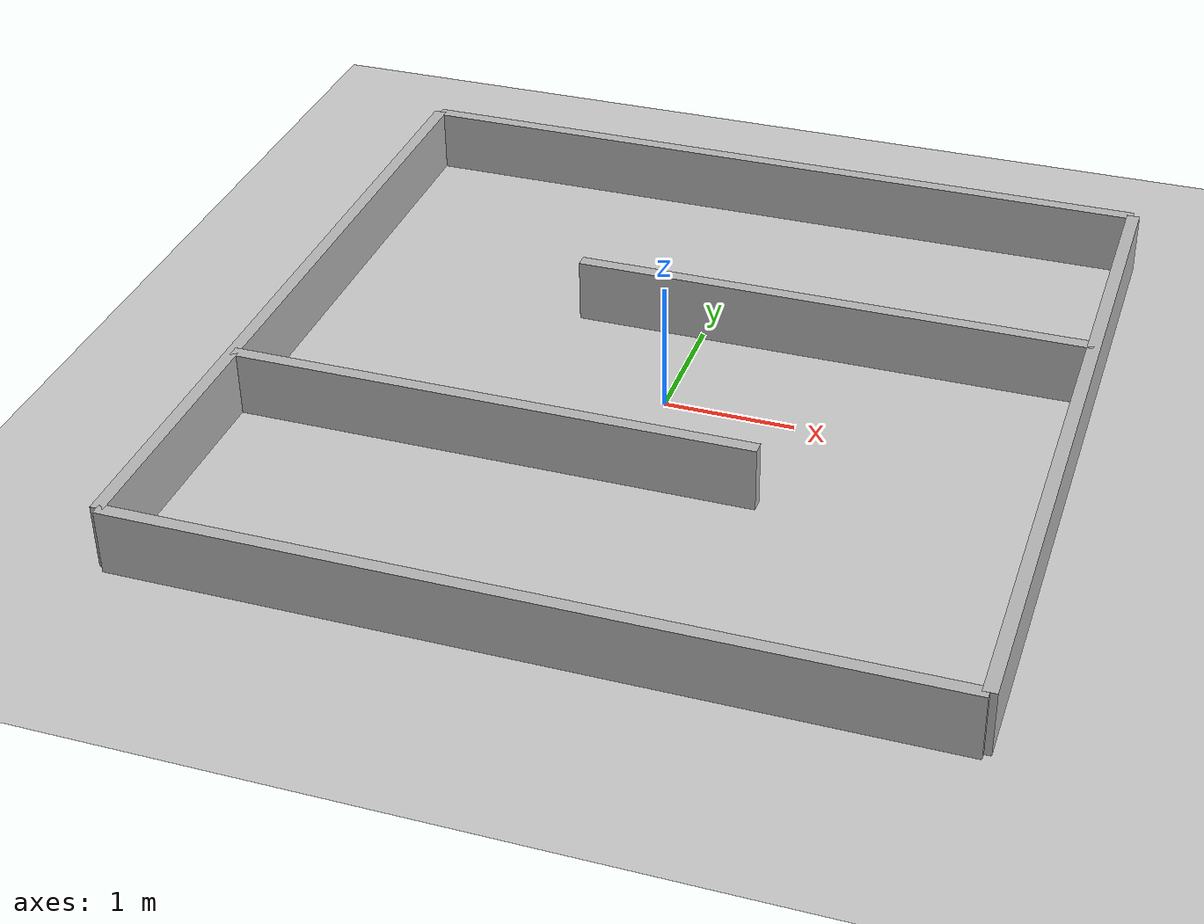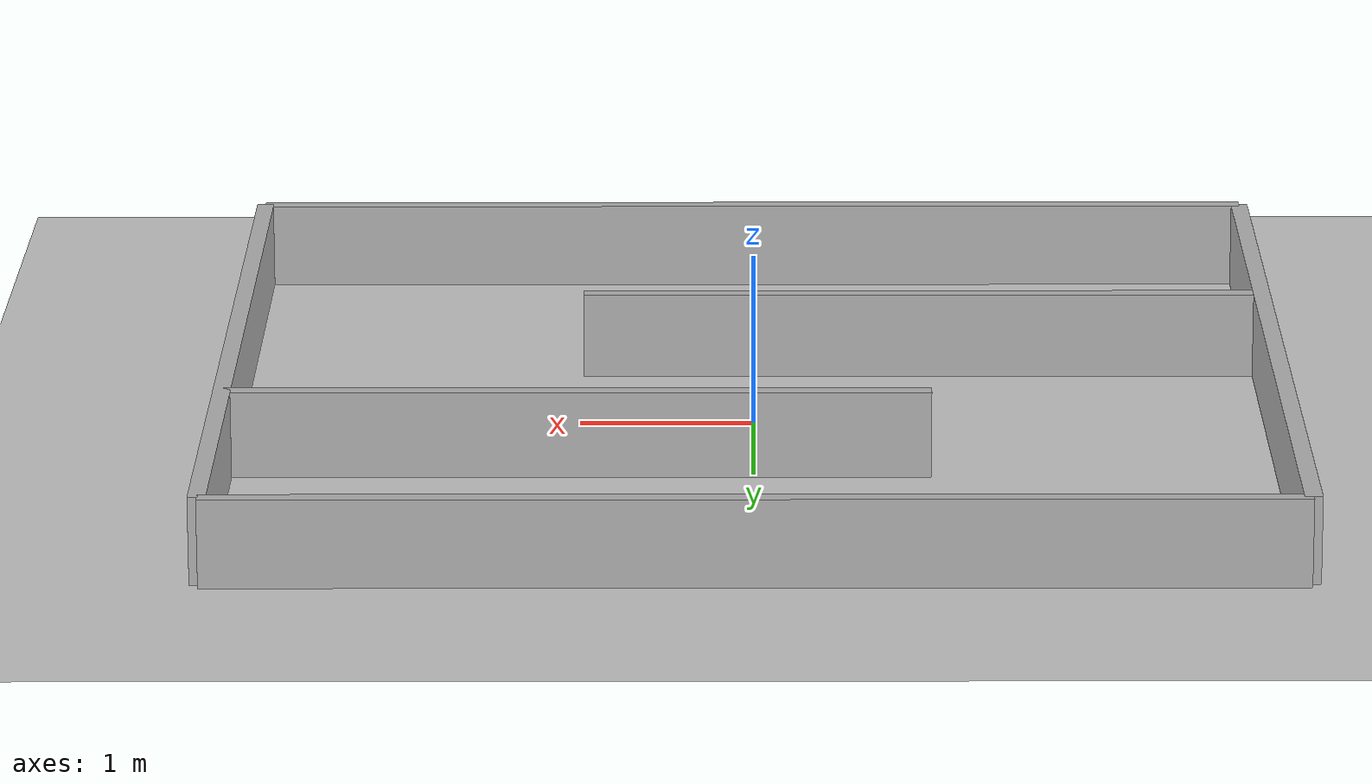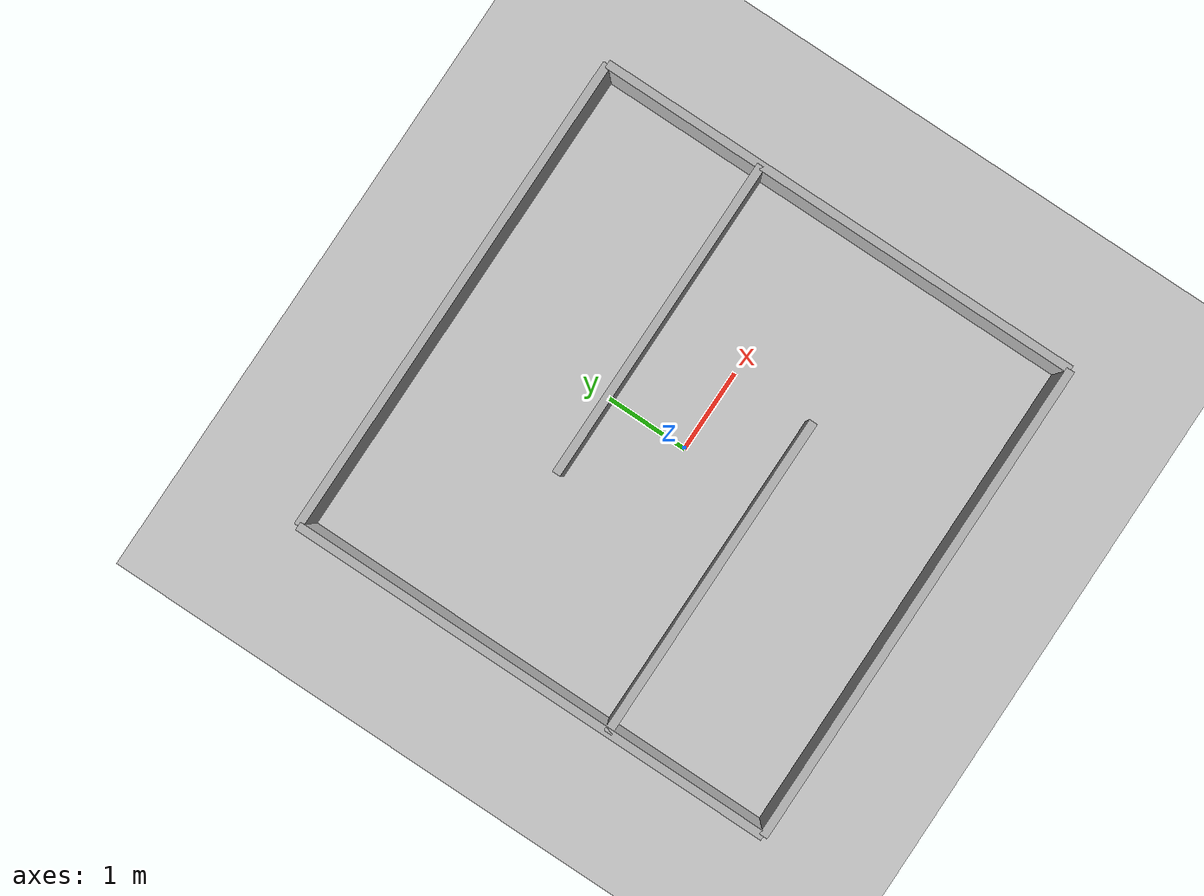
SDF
<?xml version="1.0" ?>
<sdf version="1.6">
  <world name="maze_world">
    <include><uri>model://sun</uri></include>
    <include><uri>model://ground_plane</uri></include>

    <physics type="ode">
      <max_step_size>0.001</max_step_size>
      <real_time_factor>1</real_time_factor>
      <real_time_update_rate>1000</real_time_update_rate>
    </physics>

    <model name="maze_walls">
      <static>true</static>

      <link name="wall_north">
        <pose>0 3 0.25 0 0 0</pose>
        <collision name="collision"><geometry><box><size>6 0.1 0.5</size></box></geometry></collision>
        <visual name="visual"><geometry><box><size>6 0.1 0.5</size></box></geometry></visual>
      </link>

      <link name="wall_south">
        <pose>0 -3 0.25 0 0 0</pose>
        <collision name="collision"><geometry><box><size>6 0.1 0.5</size></box></geometry></collision>
        <visual name="visual"><geometry><box><size>6 0.1 0.5</size></box></geometry></visual>
      </link>

      <link name="wall_east">
        <pose>3 0 0.25 0 0 0</pose>
        <collision name="collision"><geometry><box><size>0.1 6 0.5</size></box></geometry></collision>
        <visual name="visual"><geometry><box><size>0.1 6 0.5</size></box></geometry></visual>
      </link>

      <link name="wall_west">
        <pose>-3 0 0.25 0 0 0</pose>
        <collision name="collision"><geometry><box><size>0.1 6 0.5</size></box></geometry></collision>
        <visual name="visual"><geometry><box><size>0.1 6 0.5</size></box></geometry></visual>
      </link>

      <!-- interior wall A: spans x=-3..1 at y=-1, gap on the right (x=1..3) -->
      <link name="wall_interior_a">
        <pose>-1 -1 0.25 0 0 0</pose>
        <collision name="collision"><geometry><box><size>4 0.1 0.5</size></box></geometry></collision>
        <visual name="visual"><geometry><box><size>4 0.1 0.5</size></box></geometry></visual>
      </link>

      <!-- interior wall B: spans x=-1..3 at y=1, gap on the left (x=-3..-1) -->
      <link name="wall_interior_b">
        <pose>1 1 0.25 0 0 0</pose>
        <collision name="collision"><geometry><box><size>4 0.1 0.5</size></box></geometry></collision>
        <visual name="visual"><geometry><box><size>4 0.1 0.5</size></box></geometry></visual>
      </link>
    </model>
  </world>
</sdf>
